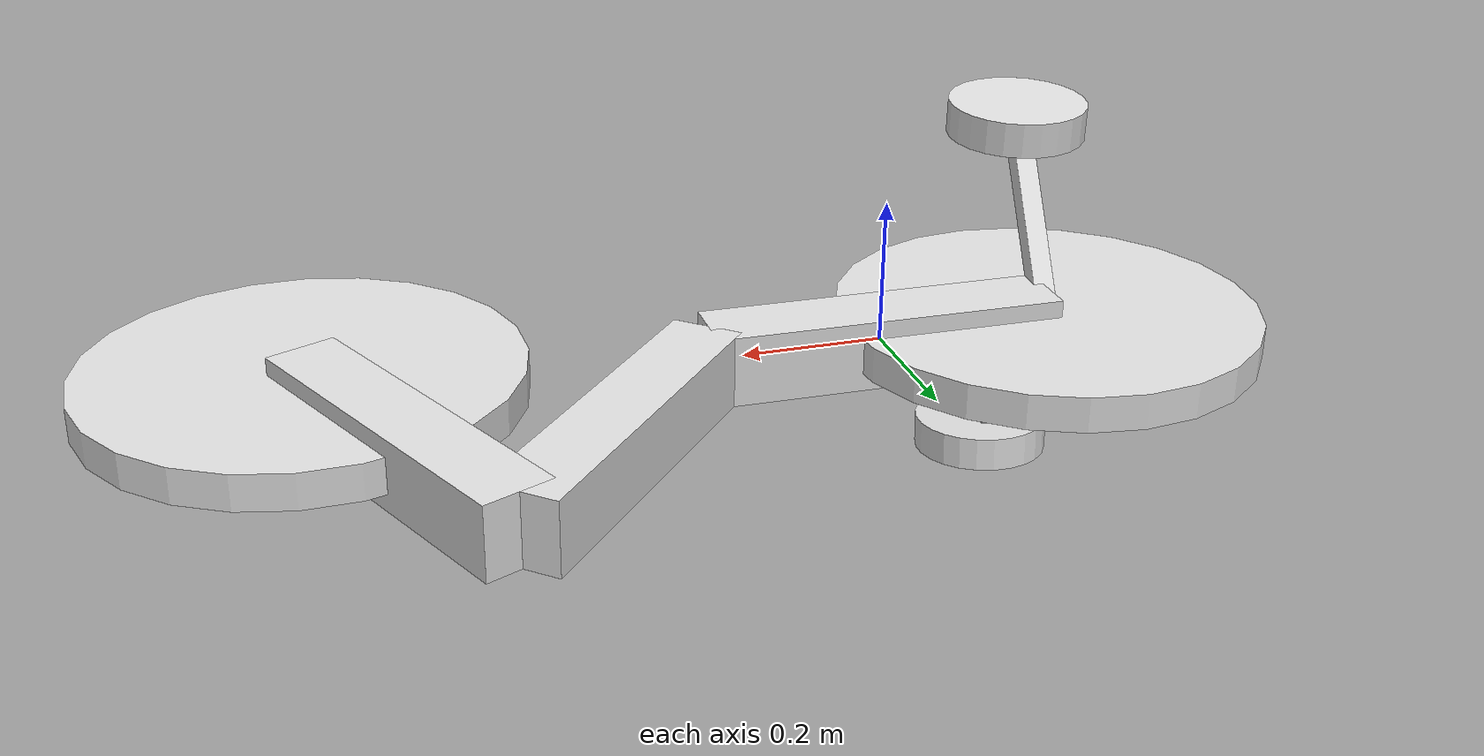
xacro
<?xml version="1.0"?>
<robot name="bike_training_wheels" xmlns:xacro="http://ros.org/wiki/xacro">

    <xacro:include filename="bike_description.xacro" />

    <link name="left_training_wheel_bar">
        <visual>
            <origin xyz="-0.15 0 0" rpy="0 0 0"/>
            <geometry>
                <box size="0.3 0.03 0.03"/>
            </geometry>
            <material name="grey"/>
        </visual>
        <xacro:chassis_inertial/>
    </link>
    <joint name="left_training_wheel_bar_joint" type="fixed">
        <parent link="base_link"/>
        <child link="left_training_wheel_bar"/>
        <origin xyz="-0.25 0 0" rpy="0 ${1+3.14} -1.5"/>
    </joint>

    <xacro:wheel_macro name="left_training_wheel" radius="0.1"/>
    <joint name="left_training_wheel_joint" type="continuous">
        <parent link="left_training_wheel_bar"/>
        <child link="left_training_wheel"/>
        <origin xyz="-0.3 0 0" rpy="3.14 2.2 0"/>
        <axis xyz="0 0 1"/>
    </joint>

    <link name="right_training_wheel_bar">
        <visual>
            <origin xyz="-0.15 0 0" rpy="0 0 0"/>
            <geometry>
                <box size="0.3 0.03 0.03"/>
            </geometry>
            <material name="grey"/>
        </visual>
        <xacro:chassis_inertial/>
    </link>
    <joint name="right_training_wheel_bar_joint" type="fixed">
        <parent link="base_link"/>
        <child link="right_training_wheel_bar"/>
        <origin xyz="-0.25 0 0" rpy="0 1 1.5"/>
    </joint>

    <xacro:wheel_macro name="right_training_wheel" radius="0.1"/>
    <joint name="right_training_wheel_joint" type="continuous">
        <parent link="right_training_wheel_bar"/>
        <child link="right_training_wheel"/>
        <origin xyz="-0.3 0 0" rpy="3.14 2.2 0"/>
        <axis xyz="0 0 1"/>
    </joint>

    <gazebo>
        <plugin name="gazebo_ros_joint_state_publisher" filename="libgazebo_ros_joint_state_publisher.so">
            <update_rate>100</update_rate>
            <joint_name>left_training_wheel_joint</joint_name>
            <joint_name>right_training_wheel_joint</joint_name>
        </plugin>
    </gazebo>

    <gazebo reference="left_training_wheel_bar">
        <material>Gazebo/Green</material>
    </gazebo>
    <gazebo reference="left_training_wheel">
        <material>Gazebo/Green</material>
    </gazebo>
    <gazebo reference="right_training_wheel_bar">
        <material>Gazebo/Green</material>
    </gazebo>
    <gazebo reference="right_training_wheel">
        <material>Gazebo/Green</material>
    </gazebo>
</robot>

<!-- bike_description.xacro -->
<robot name="bike" xmlns:xacro="http://ros.org/wiki/xacro">
    <xacro:property name="wheel_radius" value="0.3"/>
    <xacro:macro name="chassis_inertial">
       <inertial>
            <origin xyz="0 0 0" rpy="0 0 0"/>
            <mass value="1"/>
            <!-- https://en.wikipedia.org/wiki/List_of_moments_of_inertia#List_of_3D_inertia_tensors -->
            <inertia
                ixx="0.02" ixy="0.0" ixz="0.0"
                iyy="0.02" iyz="0.0"
                izz="0.0"/>
        </inertial>
    </xacro:macro>

    <material name="grey">
        <color rgba="0.9 0.9 0.9 1.0"/>
    </material>

    <link name="base_link">
        <visual>
            <origin xyz="0 0 0" rpy="0 0 0"/>
            <geometry>
                <box size="0.5 0.1 0.1"/>
            </geometry>
            <material name="grey"/>
        </visual>
        <xacro:chassis_inertial/>
    </link>

    <link name="base_footprint"></link>

    <joint name="base_footprint_joint" type="fixed">
        <parent link="base_link"/>
        <child link="base_footprint"/>
        <origin xyz="0 0 ${-wheel_radius}" rpy="0 0 0"/>
    </joint>

    <xacro:macro name="wheel_macro" params="name radius">
        <link name="${name}">
            <visual>
                <origin xyz="0 0 0" rpy="0 0 0"/>
                <geometry>
                    <cylinder length="0.05" radius="${radius}"/>
                </geometry>
                <material name="grey"/>
            </visual>

            <collision>
                <geometry>
                    <cylinder length="0.2" radius="${radius}"/>
                </geometry>
            </collision>

            <!-- https://en.wikipedia.org/wiki/List_of_moments_of_inertia#List_of_3D_inertia_tensors -->
            <inertial>
                <origin xyz="0 0 0" rpy="0 0 0"/>
                <mass value="1.5"/>
                <inertia
                    ixx="${radius*radius}*0.375" ixy="0.0" ixz="0.0"
                    iyy="${radius*radius}*0.375" iyz="0.0"
                    izz="${radius*radius}*0.125"/>
            </inertial>
        </link>
    </xacro:macro>

    <link name="tube">
        <visual>
            <origin xyz="-0.25 0 0" rpy="0 0 0"/>
            <geometry>
                <box size="0.5 0.1 0.1"/>
            </geometry>
            <material name="grey"/>
        </visual>
        <xacro:chassis_inertial/>
    </link>
    <joint name="tube_joint" type="fixed">
        <parent link="base_link"/>
        <child link="tube"/>
        <origin xyz="0.25 0 0" rpy="0 0 4"/>
    </joint>

    <link name="handle_bar">
        <visual>
            <origin xyz="-0.25 0 0" rpy="0 0 0"/>
            <geometry>
                <box size="0.5 0.1 0.1"/>
            </geometry>
            <material name="grey"/>
        </visual>
        <xacro:chassis_inertial/>
    </link>
    <joint name="handle_bar_joint" type="revolute">
        <parent link="tube"/>
        <child link="handle_bar"/>
        <origin xyz="-0.5 0 0" rpy="0 0 -2"/>
        <limit effort="10" velocity="1.0" lower="-1.4" upper="1.4"/>
        <axis xyz="1 0 0"/>
    </joint>

    <xacro:wheel_macro name="front_wheel" radius="${wheel_radius}"/>
    <joint name="front_wheel_joint" type="continuous">
        <parent link="handle_bar"/>
        <child link="front_wheel"/>
        <origin xyz="-0.5 0 0" rpy="3.14 0 0"/>
        <axis xyz="0 0 1"/>
    </joint>

    <xacro:wheel_macro name="back_wheel" radius="${wheel_radius}"/>
    <joint name="back_wheel_joint" type="continuous">
        <parent link="base_link"/>
        <child link="back_wheel"/>
        <origin xyz="-0.25 0 0" rpy="3.14 0 0"/>
        <axis xyz="0 0 1"/>
    </joint>

    <gazebo reference="base_link">
        <gravity>true</gravity>
        <sensor name="imu_sensor" type="imu">
        <always_on>true</always_on>
        <update_rate>100</update_rate>
        <visualize>true</visualize>
        <topic>__default_topic__</topic>
        <plugin filename="libgazebo_ros_imu_sensor.so" name="imu_plugin">
            <topicName>imu</topicName>
            <bodyName>base_link</bodyName>
            <updateRateHZ>10.0</updateRateHZ>
            <gaussianNoise>0.0</gaussianNoise>
            <xyzOffset>0 0 0</xyzOffset>
            <rpyOffset>0 0 0</rpyOffset>
            <frameName>base_link</frameName>
            <initialOrientationAsReference>true</initialOrientationAsReference>
        </plugin>
        <pose>0 0 0 0 0 0</pose>
        </sensor>
    </gazebo>

    <gazebo>
        <plugin name="gazebo_ros_joint_state_publisher" filename="libgazebo_ros_joint_state_publisher.so">
            <update_rate>100</update_rate>
            <joint_name>front_wheel_joint</joint_name>
            <joint_name>back_wheel_joint</joint_name>
            <joint_name>handle_bar_joint</joint_name>
        </plugin>
    </gazebo>

    <gazebo>
        <plugin name="mouse_drive" filename="libmouse_drive.so">
            <back_wheel>back_wheel</back_wheel>
            <handle_bar>handle_bar</handle_bar>
        </plugin>
    </gazebo>

    <gazebo reference="base_link">
        <material>Gazebo/Orange</material>
    </gazebo>
    <gazebo reference="handle_bar">
        <material>Gazebo/Orange</material>
    </gazebo>
    <gazebo reference="tube">
        <material>Gazebo/Orange</material>
    </gazebo>

    <gazebo reference="front_wheel">
        <material>Gazebo/Red</material>
    </gazebo>
    <gazebo reference="back_wheel">
        <material>Gazebo/Red</material>
    </gazebo>
</robot>
